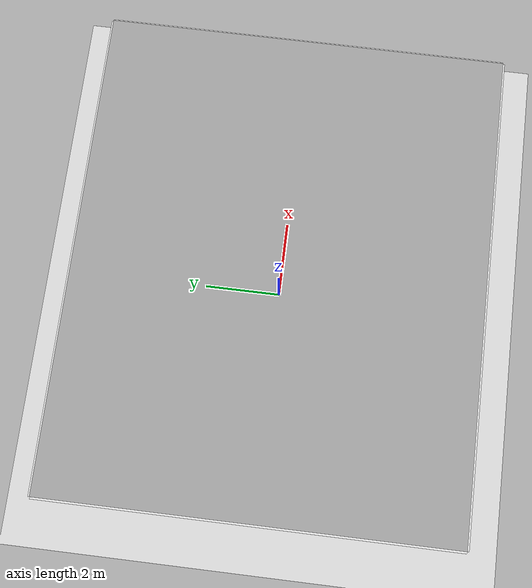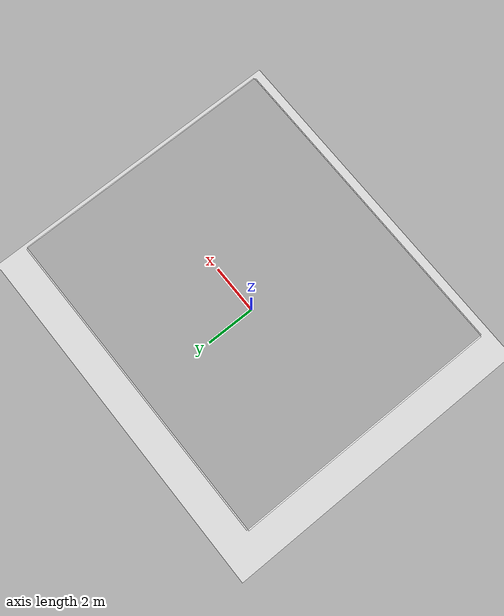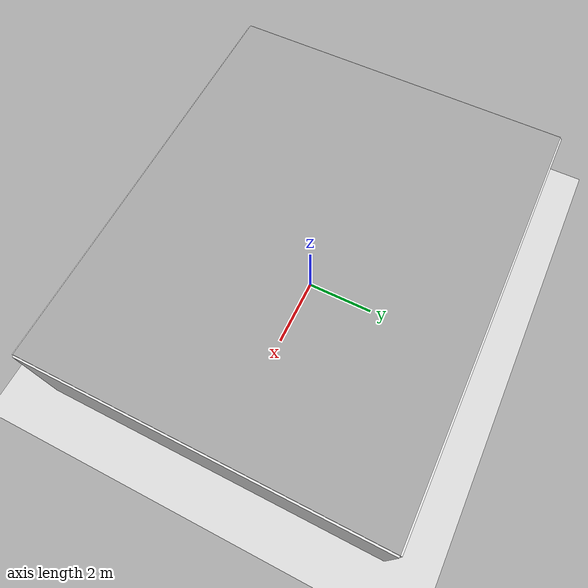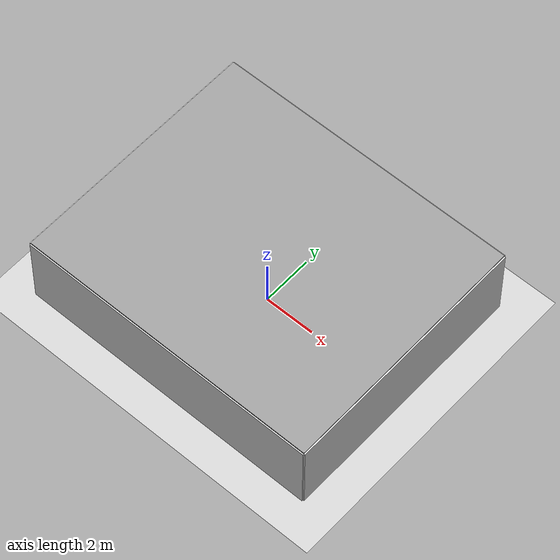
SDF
<?xml version="1.0"?>
<sdf version="1.6">
  <world name="overrack_indoor">

    <!-- Enable Gazebo ROS API plugin for ROS2 services -->
    <plugin name="gazebo_ros_api_plugin" filename="libgazebo_ros_api_plugin.so"/> <!-- ROS2 integration , to commit-->
    <!-- Publishes /gazebo/model_states and /gazebo/link_states to ROS2 -->
    <plugin name="gazebo_ros_state" filename="libgazebo_ros_state.so">
      <ros>
        <namespace>/gazebo</namespace>
      </ros>
    </plugin>
    <!-- Provides /gazebo/get_model_state and /gazebo/get_entity_state services -->
    <plugin name="gazebo_ros_factory" filename="libgazebo_ros_factory.so">
      <ros>
        <namespace>/gazebo</namespace>
      </ros>
    </plugin>

    <model name="origin_marker">
  <static>true</static>
  <pose>0 0 0 0 0 0</pose>
  <link name="link">
    <visual name="visual">
      <geometry>
        <box>
          <size>0.2 0.2 0.2</size>
        </box>
      </geometry>
      <material>
        <ambient>1 0 0 1</ambient> <!-- rosso brillante -->
        <diffuse>1 0 0 1</diffuse>
      </material>
    </visual>
  </link>
</model>

    <gravity>0 0 -9.81</gravity>
    <scene>
      <ambient>0.4 0.4 0.4 1</ambient>
      <background>0.7 0.7 0.8 1</background>
      <shadows>true</shadows>
    </scene>

<gui fullscreen="0">
  <camera name="overrack_default">
    <!-- Posizione iniziale della camera nel mondo -->
    <pose>-6 -6 8.0 0 0.75 0.7</pose>

    <!-- Camera in modalità FPS -->
    <view_controller>fps</view_controller>

    <!-- Segui il drone -->
  </camera>
</gui>

    <physics type="ode">
      <max_step_size>0.004</max_step_size>
      <real_time_update_rate>250</real_time_update_rate>
      <real_time_factor>1.0</real_time_factor>
    </physics>

    <!-- Sun and ground -->
    <include>
      <uri>model://sun</uri>
    </include>
    <include>
      <uri>model://ground_plane</uri>
    </include>
<!-- Simple room walls -->
    <model name="room">
      <static>true</static>
      <pose>0 0 0 0 0 0</pose>
      <!-- Roof -->
      <link name="roof">
        <pose>0 0 3.0 0 0 0</pose>
        <collision name="col">
          <geometry>
            <box>
              <size>12 10 0.1</size>
            </box>
          </geometry>
        </collision>
        <visual name="vis">
          <geometry>
            <box>
              <size>12 10 0.1</size>
            </box>
          </geometry>
          <material>
            <script>
                <name>Gazebo/Gray</name>
            </script>
            <transparency>0</transparency>
            <ambient>0.6 0.6 0.6 1</ambient>
            <diffuse>0.6 0.6 0.6 1</diffuse>
          </material>
        </visual>
      </link>

      <!-- Four walls: 12m x 10m room, 3m tall -->
      <link name="wall_north">
        <pose>0 5 1.5 0 0 0</pose>
        <collision name="col">
          <geometry>
            <box><size>12 0.1 3</size></box>
          </geometry>
        </collision>
        <visual name="vis">
          <geometry>
            <box><size>12 0.1 3</size></box>
          </geometry>
          <material>
            <ambient>0.85 0.85 0.85 1</ambient>
            <diffuse>0.85 0.85 0.85 1</diffuse>
            <transparency>0.6</transparency>
          </material>
        </visual>
      </link>
      <link name="wall_south">
        <pose>0 -5 1.5 0 0 0</pose>
        <collision name="col">
          <geometry>
            <box><size>12 0.1 3</size></box>
          </geometry>
        </collision>
        <visual name="vis">
          <geometry>
            <box><size>12 0.1 3</size></box>
          </geometry>
          <material>
            <ambient>0.85 0.85 0.85 1</ambient>
            <diffuse>0.85 0.85 0.85 1</diffuse>
            <transparency>0.6</transparency>
          </material>
        </visual>
      </link>
      <link name="wall_east">
        <pose>6 0 1.5 0 0 0</pose>
        <collision name="col">
          <geometry>
            <box><size>0.1 10 3</size></box>
          </geometry>
        </collision>
        <visual name="vis">
          <geometry>
            <box><size>0.1 10 3</size></box>
          </geometry>
          <material>
            <ambient>0.85 0.85 0.85 1</ambient>
            <diffuse>0.85 0.85 0.85 1</diffuse>
            <transparency>0.6</transparency>
          </material>
        </visual>
      </link>
      <link name="wall_west">
        <pose>-6 0 1.5 0 0 0</pose>
        <collision name="col">
          <geometry>
            <box><size>0.1 10 3</size></box>
          </geometry>
        </collision>
        <visual name="vis">
          <geometry>
            <box><size>0.1 10 3</size></box>
          </geometry>
          <material>
            <ambient>0.85 0.85 0.85 1</ambient>
            <diffuse>0.85 0.85 0.85 1</diffuse>
            <transparency>0.6</transparency>
          </material>
        </visual>
      </link>
    </model>

    <!-- Two rack rows -->
    <include>
      <uri>model://overrack_shelf</uri>
      <name>rack_row_a</name>
      <pose>0 -2.5 0 0 0 0</pose>
    </include>
    <include>
      <uri>model://overrack_shelf</uri>
      <name>rack_row_b</name>
      <pose>0 2.5 0 0 0 0</pose>
    </include>

    <!-- Boxes on shelves -->
    <include>
      <uri>model://overrack_box</uri>
      <name>box_a1</name>
      <pose>-0.8 -2.6 0.55 0 0 0</pose>
    </include>
    <include>
      <uri>model://overrack_box</uri>
      <name>box_a2</name>
      <pose>0.0 -2.6 0.55 0 0 0</pose>
    </include>
    <include>
      <uri>model://overrack_box</uri>
      <name>box_a3</name>
      <pose>0.8 -2.6 0.55 0 0 0</pose>
    </include>
    <include>
      <uri>model://overrack_box</uri>
      <name>box_a4</name>
      <pose>-0.8 -2.6 1.55 0 0 0</pose>
    </include>
    <include>
      <uri>model://overrack_box</uri>
      <name>box_a5</name>
      <pose>0.0 -2.6 1.55 0 0 0</pose>
    </include>
    <include>
      <uri>model://overrack_box</uri>
      <name>box_a6</name>
      <pose>0.8 -2.6 1.55 0 0 0</pose>
    </include>

    <include>
      <uri>model://overrack_box</uri>
      <name>box_b1</name>
      <pose>-0.8 2.6 0.55 0 0 0</pose>
    </include>
    <include>
      <uri>model://overrack_box</uri>
      <name>box_b2</name>
      <pose>0.0 2.6 0.55 0 0 0</pose>
    </include>
    <include>
      <uri>model://overrack_box</uri>
      <name>box_b3</name>
      <pose>0.8 2.6 0.55 0 0 0</pose>
    </include>
    <include>
      <uri>model://overrack_box</uri>
      <name>box_b4</name>
      <pose>-0.8 2.6 1.55 0 0 0</pose>
    </include>
    <include>
      <uri>model://overrack_box</uri>
      <name>box_b5</name>
      <pose>0.0 2.6 1.55 0 0 0</pose>
    </include>
    <include>
      <uri>model://overrack_box</uri>
      <name>box_b6</name>
      <pose>0.8 2.6 1.55 0 0 0</pose>
    </include>

    <!-- Barcode boards positioned on upper shelves (placeholders) -->

    <!-- Drone (PX4 Iris variant with downward-facing optical flow/camera) -->
    <!-- Requires PX4 sitl_gazebo models available in GAZEBO_MODEL_PATH -->

    <!-- Disabled for now since PX4 should spawn one -->

    <!-- Visible scan markers aligned with config/mission.yaml (ENU, z=0) -->
<!-- ====== NON-COLLIDABLE WAYPOINT MARKERS (visual-only) ====== -->
<!-- helper: un marker visual-only -->
<!-- (SDF non supporta macro: duplico il blocco per ogni waypoint) -->

<!-- spawn (floor) -->
<model name="wp_spawn_floor">
  <static>true</static>
  <pose>0.0 0.0 0 0 0 0</pose>
  <link name="link">
    <visual name="vis">
      <geometry><cylinder><radius>0.07</radius><length>0.01</length></cylinder></geometry>
      <material><ambient>0.2 0.8 0.2 1</ambient><diffuse>0.2 0.8 0.2 1</diffuse></material>
    </visual>
  </link>
</model>

<!-- spawn (floating at mission altitude 1 m) -->
<model name="wp_spawn_alt">
  <static>true</static>
  <pose>0.0 0.0 1 0 0 0</pose>
  <link name="link">
    <visual name="vis">
      <geometry><cylinder><radius>0.07</radius><length>0.01</length></cylinder></geometry>
      <material><ambient>0.2 0.8 0.2 1</ambient><diffuse>0.2 0.8 0.2 1</diffuse></material>
    </visual>
  </link>
</model>

<model name="wp_A_floor"><static>true</static><pose>-2 0 0 0 0 0</pose>
  <link name="link"><visual name="vis">
    <geometry><cylinder><radius>0.07</radius><length>0.01</length></cylinder></geometry>
    <material><ambient>0.2 0.6 1 1</ambient><diffuse>0.2 0.6 1 1</diffuse></material>
  </visual></link>
</model>
<model name="wp_A_alt"><static>true</static><pose>-2 0 1 0 0 0</pose>
  <link name="link"><visual name="vis">
    <geometry><cylinder><radius>0.07</radius><length>0.01</length></cylinder></geometry>
    <material><ambient>0.2 0.6 1 1</ambient><diffuse>0.2 0.6 1 1</diffuse></material>
  </visual></link>
</model>

<!-- B_arrival -->
<model name="wp_B_arrival_floor"><static>true</static><pose>-2 -3.5 0 0 0 0</pose>
  <link name="link"><visual name="vis">
    <geometry><cylinder><radius>0.07</radius><length>0.01</length></cylinder></geometry>
    <material><ambient>1 0.6 0.2 1</ambient><diffuse>1 0.6 0.2 1</diffuse></material>
  </visual></link>
</model>
<model name="wp_B_arrival_alt"><static>true</static><pose>-2 -3.5 1 0 0 0</pose>
  <link name="link"><visual name="vis">
    <geometry><cylinder><radius>0.07</radius><length>0.01</length></cylinder></geometry>
    <material><ambient>1 0.6 0.2 1</ambient><diffuse>1 0.6 0.2 1</diffuse></material>
  </visual></link>
</model>

<!-- BC (usato anche per *_photo) -->
<model name="wp_BC_floor"><static>true</static><pose>-0.8 -3.5 0 0 0 0</pose>
  <link name="link"><visual name="vis"><geometry><cylinder><radius>0.07</radius><length>0.01</length></cylinder></geometry>
    <material><ambient>1 0 0.4 1</ambient><diffuse>1 0 0.4 1</diffuse></material>
  </visual></link>
</model>
<model name="wp_BC_alt"><static>true</static><pose>-0.8 -3.5 1 0 0 0</pose>
  <link name="link"><visual name="vis"><geometry><cylinder><radius>0.07</radius><length>0.01</length></cylinder></geometry>
    <material><ambient>1 0 0.4 1</ambient><diffuse>1 0 0.4 1</diffuse></material>
  </visual></link>
</model>

<model name="wp_C_floor"><static>true</static><pose>0 -3.5 0 0 0 0</pose>
  <link name="link"><visual name="vis"><geometry><cylinder><radius>0.07</radius><length>0.01</length></cylinder></geometry>
    <material><ambient>0.9 0.9 0.2 1</ambient><diffuse>0.9 0.9 0.2 1</diffuse></material>
  </visual></link>
</model>
<model name="wp_C_alt"><static>true</static><pose>0 -3.5 1 0 0 0</pose>
  <link name="link"><visual name="vis"><geometry><cylinder><radius>0.07</radius><length>0.01</length></cylinder></geometry>
    <material><ambient>0.9 0.9 0.2 1</ambient><diffuse>0.9 0.9 0.2 1</diffuse></material>
  </visual></link>
</model>

<!-- CD -->
<model name="wp_CD_floor"><static>true</static><pose>0.8 -3.5 0 0 0 0</pose>
  <link name="link"><visual name="vis"><geometry><cylinder><radius>0.07</radius><length>0.01</length></cylinder></geometry>
    <material><ambient>0.6 0.2 1 1</ambient><diffuse>0.6 0.2 1 1</diffuse></material>
  </visual></link>
</model>
<model name="wp_CD_alt"><static>true</static><pose>0.8 -3.5 1 0 0 0</pose>
  <link name="link"><visual name="vis"><geometry><cylinder><radius>0.07</radius><length>0.01</length></cylinder></geometry>
    <material><ambient>0.6 0.2 1 1</ambient><diffuse>0.6 0.2 1 1</diffuse></material>
  </visual></link>
</model>

<!-- D (yaw 180° se vuoi indicarlo con una freccia, ma il disco non ha verso) -->
<model name="wp_D_floor"><static>true</static><pose>2 -3.5 0 0 0 3.1415926536</pose>
  <link name="link"><visual name="vis"><geometry><cylinder><radius>0.07</radius><length>0.01</length></cylinder></geometry>
    <material><ambient>0.2 1 0.6 1</ambient><diffuse>0.2 1 0.6 1</diffuse></material>
  </visual></link>
</model>
<model name="wp_D_alt"><static>true</static><pose>2 -3.5 1 0 0 3.1415926536</pose>
  <link name="link"><visual name="vis"><geometry><cylinder><radius>0.07</radius><length>0.01</length></cylinder></geometry>
    <material><ambient>0.2 1 0.6 1</ambient><diffuse>0.2 1 0.6 1</diffuse></material>
  </visual></link>
</model>

<model name="wp_E_floor"><static>true</static><pose>2 3.5 0 0 0 3.1415926536</pose>
  <link name="link"><visual name="vis"><geometry><cylinder><radius>0.07</radius><length>0.01</length></cylinder></geometry>
    <material><ambient>0.2 0.8 0.8 1</ambient><diffuse>0.2 0.8 0.8 1</diffuse></material>
  </visual></link>
</model>
<model name="wp_E_alt"><static>true</static><pose>2 3.5 1 0 0 3.1415926536</pose>
  <link name="link"><visual name="vis"><geometry><cylinder><radius>0.07</radius><length>0.01</length></cylinder></geometry>
    <material><ambient>0.2 0.8 0.8 1</ambient><diffuse>0.2 0.8 0.8 1</diffuse></material>
  </visual></link>
</model>

<!-- EF -->
<model name="wp_EF_floor"><static>true</static><pose>0.8 3.5 0 0 0 3.1415926536</pose>
  <link name="link"><visual name="vis"><geometry><cylinder><radius>0.07</radius><length>0.01</length></cylinder></geometry>
    <material><ambient>0.8 0.2 0.8 1</ambient><diffuse>0.8 0.2 0.8 1</diffuse></material>
  </visual></link>
</model>
<model name="wp_EF_alt"><static>true</static><pose>0.8 3.5 1 0 0 3.1415926536</pose>
  <link name="link"><visual name="vis"><geometry><cylinder><radius>0.07</radius><length>0.01</length></cylinder></geometry>
    <material><ambient>0.8 0.2 0.8 1</ambient><diffuse>0.8 0.2 0.8 1</diffuse></material>
  </visual></link>
</model>

<model name="wp_F_floor"><static>true</static><pose>0 3.5 0 0 0 3.1415926536</pose>
  <link name="link"><visual name="vis"><geometry><cylinder><radius>0.07</radius><length>0.01</length></cylinder></geometry>
    <material><ambient>0.8 0.8 0.2 1</ambient><diffuse>0.8 0.8 0.2 1</diffuse></material>
  </visual></link>
</model>
<model name="wp_F_alt"><static>true</static><pose>0 3.5 1 0 0 3.1415926536</pose>
  <link name="link"><visual name="vis"><geometry><cylinder><radius>0.07</radius><length>0.01</length></cylinder></geometry>
    <material><ambient>0.8 0.8 0.2 1</ambient><diffuse>0.8 0.8 0.2 1</diffuse></material>
  </visual></link>
</model>

<!-- FG -->
<model name="wp_FG_floor"><static>true</static><pose>-0.8 3.5 0 0 0 3.1415926536</pose>
  <link name="link"><visual name="vis"><geometry><cylinder><radius>0.07</radius><length>0.01</length></cylinder></geometry>
    <material><ambient>0.6 0.6 0.6 1</ambient><diffuse>0.6 0.6 0.6 1</diffuse></material>
  </visual></link>
</model>
<model name="wp_FG_alt"><static>true</static><pose>-0.8 3.5 1 0 0 3.1415926536</pose>
  <link name="link"><visual name="vis"><geometry><cylinder><radius>0.07</radius><length>0.01</length></cylinder></geometry>
    <material><ambient>0.6 0.6 0.6 1</ambient><diffuse>0.6 0.6 0.6 1</diffuse></material>
  </visual></link>
</model>

<model name="wp_G_floor"><static>true</static><pose>-2 3.5 0 0 0 3.1415926536</pose>
  <link name="link"><visual name="vis"><geometry><cylinder><radius>0.07</radius><length>0.01</length></cylinder></geometry>
    <material><ambient>0.2 0.2 0.9 1</ambient><diffuse>0.2 0.2 0.9 1</diffuse></material>
  </visual></link>
</model>
<model name="wp_G_alt"><static>true</static><pose>-2 3.5 1 0 0 3.1415926536</pose>
  <link name="link"><visual name="vis"><geometry><cylinder><radius>0.07</radius><length>0.01</length></cylinder></geometry>
    <material><ambient>0.2 0.2 0.9 1</ambient><diffuse>0.2 0.2 0.9 1</diffuse></material>
  </visual></link>
</model>

<model name="wp_H_floor"><static>true</static><pose>0 0 0 0 0 0</pose>
  <link name="link"><visual name="vis"><geometry><cylinder><radius>0.07</radius><length>0.01</length></cylinder></geometry>
    <material><ambient>0.2 0.8 0.2 1</ambient><diffuse>0.2 0.8 0.2 1</diffuse></material>
  </visual></link>
</model>
<model name="wp_H_alt"><static>true</static><pose>0 0 1 0 0 0</pose>
  <link name="link"><visual name="vis"><geometry><cylinder><radius>0.07</radius><length>0.01</length></cylinder></geometry>
    <material><ambient>0.2 0.8 0.2 1</ambient><diffuse>0.2 0.8 0.2 1</diffuse></material>
  </visual></link>
</model>

  </world>
</sdf>

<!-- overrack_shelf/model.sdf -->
<sdf version="1.6">
  <model name="overrack_shelf">
    <static>true</static>
    <!-- Dimensions: width 2.4m, depth 0.8m, height 2.0m -->
    <link name="frame">
      <!-- Four support posts -->
      <visual name="post_fl">
        <pose>-1.2 -0.4 1.0 0 0 0</pose>
        <geometry><box><size>0.06 0.06 2.0</size></box></geometry>
        <material><ambient>0.3 0.3 0.35 1</ambient><diffuse>0.3 0.3 0.35 1</diffuse></material>
      </visual>
      <collision name="post_fl_c">
        <pose>-1.2 -0.4 1.0 0 0 0</pose>
        <geometry><box><size>0.06 0.06 2.0</size></box></geometry>
      </collision>

      <visual name="post_fr">
        <pose>1.2 -0.4 1.0 0 0 0</pose>
        <geometry><box><size>0.06 0.06 2.0</size></box></geometry>
        <material><ambient>0.3 0.3 0.35 1</ambient><diffuse>0.3 0.3 0.35 1</diffuse></material>
      </visual>
      <collision name="post_fr_c">
        <pose>1.2 -0.4 1.0 0 0 0</pose>
        <geometry><box><size>0.06 0.06 2.0</size></box></geometry>
      </collision>

      <visual name="post_rl">
        <pose>-1.2 0.4 1.0 0 0 0</pose>
        <geometry><box><size>0.06 0.06 2.0</size></box></geometry>
        <material><ambient>0.3 0.3 0.35 1</ambient><diffuse>0.3 0.3 0.35 1</diffuse></material>
      </visual>
      <collision name="post_rl_c">
        <pose>-1.2 0.4 1.0 0 0 0</pose>
        <geometry><box><size>0.06 0.06 2.0</size></box></geometry>
      </collision>

      <visual name="post_rr">
        <pose>1.2 0.4 1.0 0 0 0</pose>
        <geometry><box><size>0.06 0.06 2.0</size></box></geometry>
        <material><ambient>0.3 0.3 0.35 1</ambient><diffuse>0.3 0.3 0.35 1</diffuse></material>
      </visual>
      <collision name="post_rr_c">
        <pose>1.2 0.4 1.0 0 0 0</pose>
        <geometry><box><size>0.06 0.06 2.0</size></box></geometry>
      </collision>

      <!-- Shelves (boards) at 0.5m and 1.5m -->
      <visual name="shelf_low">
        <pose>0 0 0.5 0 0 0</pose>
        <geometry><box><size>2.4 0.8 0.04</size></box></geometry>
        <material><ambient>0.6 0.5 0.4 1</ambient><diffuse>0.6 0.5 0.4 1</diffuse></material>
      </visual>
      <collision name="shelf_low_c">
        <pose>0 0 0.5 0 0 0</pose>
        <geometry><box><size>2.4 0.8 0.04</size></box></geometry>
      </collision>

      <visual name="shelf_up">
        <pose>0 0 1.5 0 0 0</pose>
        <geometry><box><size>2.4 0.8 0.04</size></box></geometry>
        <material><ambient>0.6 0.5 0.4 1</ambient><diffuse>0.6 0.5 0.4 1</diffuse></material>
      </visual>
      <collision name="shelf_up_c">
        <pose>0 0 1.5 0 0 0</pose>
        <geometry><box><size>2.4 0.8 0.04</size></box></geometry>
      </collision>
    </link>
  </model>
</sdf>

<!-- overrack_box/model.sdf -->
<sdf version="1.6">
  <model name="overrack_box">
    <static>true</static>
    <link name="box_link">
      <pose>0 0 0.1 0 0 0</pose>
      <collision name="box_collision">
        <geometry>
          <box>
            <size>0.4 0.3 0.2</size>
          </box>
        </geometry>
      </collision>
      <visual name="box_visual">
        <geometry>
          <box>
            <size>0.4 0.3 0.2</size>
          </box>
        </geometry>
        <material>
          <ambient>0.8 0.6 0.3 1</ambient>
          <diffuse>0.8 0.6 0.3 1</diffuse>
        </material>
      </visual>
    </link>
  </model>
</sdf>
